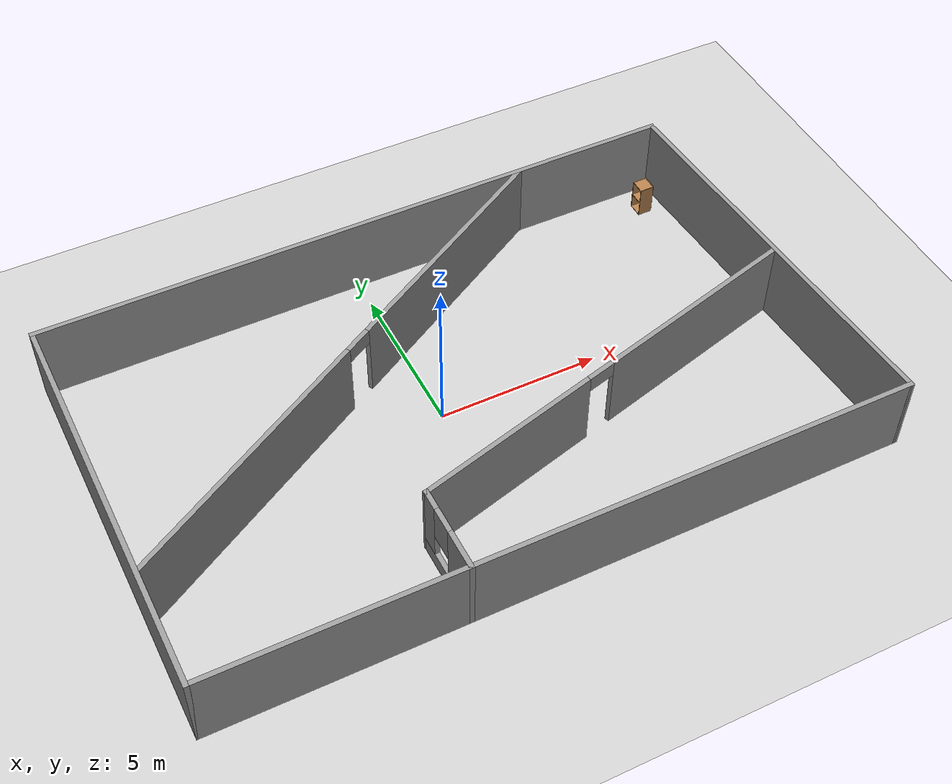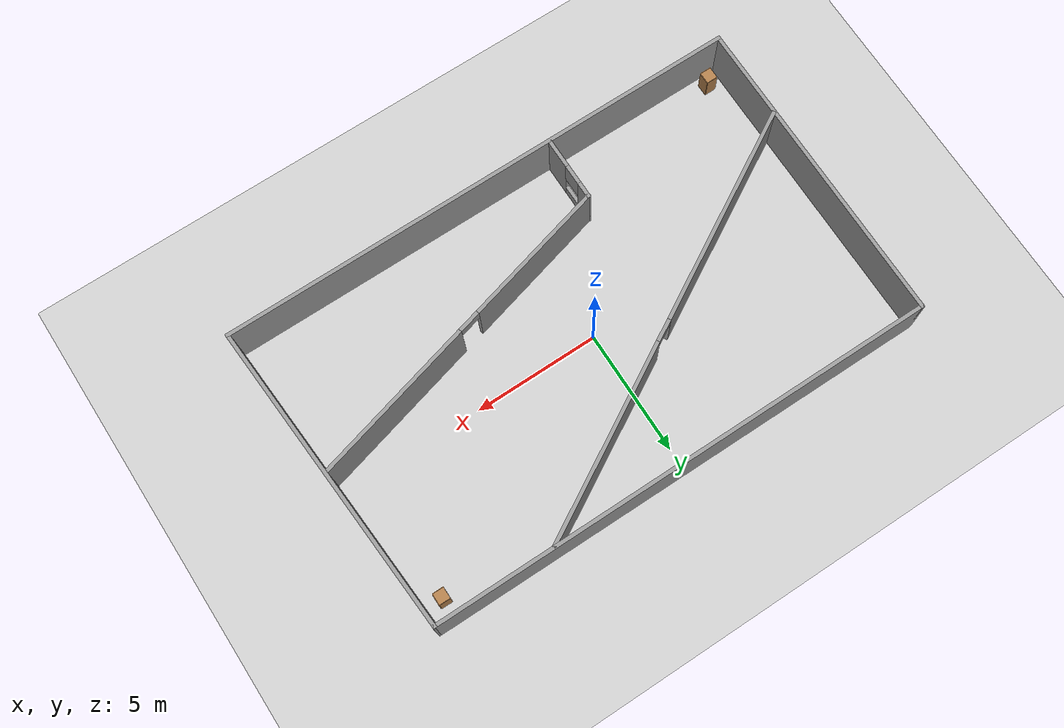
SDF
<sdf version="1.6">
 <world name="default">
  <light name="sun" type="directional">
   <pose>0 0 10 0 -0 0</pose>
   <diffuse>0.8 0.8 0.8 1</diffuse>
   <specular>0.2 0.2 0.2 1</specular>
   <attenuation>
    <range>1000</range>
    <constant>0.9</constant>
    <linear>0.01</linear>
    <quadratic>0.001</quadratic>
   </attenuation>
   <direction>-0.5 0.1 -0.9</direction>
  </light>
  <model name="ground_plane">
   <static>1</static>
   <link name="link">
    <collision name="collision">
     <geometry><plane><normal>0 0 1</normal><size>100 100</size></plane></geometry>
     <surface>
      <contact><collide_bitmask>65535</collide_bitmask></contact>
      <friction><ode><mu>100</mu><mu2>50</mu2></ode></friction>
     </surface>
    </collision>
    <visual name="visual">
     <cast_shadows>0</cast_shadows>
     <geometry><plane><normal>0 0 1</normal><size>100 100</size></plane></geometry>
     <material>
      <script><uri>file://media/materials/scripts/gazebo.material</uri><name>Gazebo/Grey</name></script>
     </material>
    </visual>
   </link>
  </model>
  <gravity>0 0 -9.8</gravity>
  <magnetic_field>6e-06 2.3e-05 -4.2e-05</magnetic_field>
  <atmosphere type="adiabatic"/>
  <physics name="default_physics" default="0" type="ode">
   <max_step_size>0.001</max_step_size>
   <real_time_factor>1</real_time_factor>
   <real_time_update_rate>1000</real_time_update_rate>
  </physics>
  <scene><ambient>0.4 0.4 0.4 1</ambient><background>0.7 0.7 0.7 1</background><shadows>1</shadows></scene>
  <spherical_coordinates>
   <surface_model>EARTH_WGS84</surface_model>
   <latitude_deg>0</latitude_deg>
   <longitude_deg>0</longitude_deg>
   <elevation>0</elevation>
   <heading_deg>0</heading_deg>
  </spherical_coordinates>
  <model name="smaller_world">
   <pose>0.589434 -0.30362 0 0 -0 0</pose>
   <link name="Wall_13">
    <collision name="Wall_13_Collision">
     <geometry><box><size>21.25 0.15 2.5</size></box></geometry>
     <pose>0 0 1.25 0 -0 0</pose>
    </collision>
    <visual name="Wall_13_Visual">
     <pose>0 0 1.25 0 -0 0</pose>
     <geometry><box><size>21.25 0.15 2.5</size></box></geometry>
     <material>
      <script><uri>file://media/materials/scripts/gazebo.material</uri><name>Gazebo/Grey</name></script>
      <ambient>1 1 1 1</ambient>
     </material>
     <meta><layer>0</layer></meta>
    </visual>
    <pose>-0.002162 -6.3 0 0 -0 0</pose>
   </link>
   <link name="Wall_15">
    <collision name="Wall_15_Collision">
     <geometry><box><size>12.75 0.15 2.5</size></box></geometry>
     <pose>0 0 1.25 0 -0 0</pose>
    </collision>
    <visual name="Wall_15_Visual">
     <pose>0 0 1.25 0 -0 0</pose>
     <geometry><box><size>12.75 0.15 2.5</size></box></geometry>
     <material>
      <script><uri>file://media/materials/scripts/gazebo.material</uri><name>Gazebo/Grey</name></script>
      <ambient>1 1 1 1</ambient>
     </material>
     <meta><layer>0</layer></meta>
    </visual>
    <pose>-10.5522 0 0 0 -0 1.5708</pose>
   </link>
   <link name="Wall_16">
    <collision name="Wall_16_Collision">
     <geometry><box><size>20.5 0.15 2.5</size></box></geometry>
     <pose>0 0 1.25 0 -0 0</pose>
    </collision>
    <visual name="Wall_16_Visual">
     <pose>0 0 1.25 0 -0 0</pose>
     <geometry><box><size>20.5 0.15 2.5</size></box></geometry>
     <material>
      <script><uri>file://media/materials/scripts/gazebo.material</uri><name>Gazebo/Grey</name></script>
      <ambient>1 1 1 1</ambient>
     </material>
     <meta><layer>0</layer></meta>
    </visual>
    <pose>-0.377162 6.3 0 0 -0 0</pose>
   </link>
   <link name="Wall_17">
    <collision name="Wall_17_Collision">
     <geometry><box><size>12.7723 0.15 2.5</size></box></geometry>
     <pose>0 0 1.25 0 -0 0</pose>
    </collision>
    <visual name="Wall_17_Visual">
     <pose>0 0 1.25 0 -0 0</pose>
     <geometry><box><size>12.7723 0.15 2.5</size></box></geometry>
     <material>
      <script><uri>file://media/materials/scripts/gazebo.material</uri><name>Gazebo/Grey</name></script>
      <ambient>1 1 1 1</ambient>
     </material>
     <meta><layer>0</layer></meta>
    </visual>
    <pose>10.1728 0 0 0 0 -1.51134</pose>
   </link>
   <link name="Wall_19">
    <pose>-2.76136 1.79265 0 0 -0 0.523599</pose>
    <visual name="Wall_19_Visual_0">
     <pose>-4.51706 0 1.25 0 -0 0</pose>
     <geometry><box><size>8.96588 0.15 2.5</size></box></geometry>
     <material>
      <script><uri>file://media/materials/scripts/gazebo.material</uri><name>Gazebo/Grey</name></script>
      <ambient>1 1 1 1</ambient>
     </material>
     <meta><layer>0</layer></meta>
    </visual>
    <collision name="Wall_19_Collision_0">
     <geometry><box><size>8.96588 0.15 2.5</size></box></geometry>
     <pose>-4.51706 0 1.25 0 -0 0</pose>
    </collision>
    <visual name="Wall_19_Visual_1">
     <pose>4.93294 0 1.25 0 -0 0</pose>
     <geometry><box><size>8.13412 0.15 2.5</size></box></geometry>
     <material>
      <script><uri>file://media/materials/scripts/gazebo.material</uri><name>Gazebo/Grey</name></script>
      <ambient>1 1 1 1</ambient>
     </material>
     <meta><layer>0</layer></meta>
    </visual>
    <collision name="Wall_19_Collision_1">
     <geometry><box><size>8.13412 0.15 2.5</size></box></geometry>
     <pose>4.93294 0 1.25 0 -0 0</pose>
    </collision>
    <visual name="Wall_19_Visual_2">
     <pose>0.415876 0 2.25 0 -0 0</pose>
     <geometry><box><size>0.9 0.15 0.5</size></box></geometry>
     <material>
      <script><uri>file://media/materials/scripts/gazebo.material</uri><name>Gazebo/Grey</name></script>
      <ambient>1 1 1 1</ambient>
     </material>
     <meta><layer>0</layer></meta>
    </visual>
    <collision name="Wall_19_Collision_2">
     <geometry><box><size>0.9 0.15 0.5</size></box></geometry>
     <pose>0.415876 0 2.25 0 -0 0</pose>
    </collision>
   </link>
   <link name="Wall_21">
    <pose>-2.98423 -5 0 0 -0 1.5708</pose>
    <visual name="Wall_21_Visual_0">
     <pose>-0.737638 0 1.25 0 -0 0</pose>
     <geometry><box><size>1.27473 0.15 2.5</size></box></geometry>
     <material>
      <script><uri>file://media/materials/scripts/gazebo.material</uri><name>Gazebo/Grey</name></script>
      <ambient>1 1 1 1</ambient>
     </material>
     <meta><layer>0</layer></meta>
    </visual>
    <collision name="Wall_21_Collision_0">
     <geometry><box><size>1.27473 0.15 2.5</size></box></geometry>
     <pose>-0.737638 0 1.25 0 -0 0</pose>
    </collision>
    <visual name="Wall_21_Visual_1">
     <pose>0.637362 0 0.25 0 -0 0</pose>
     <geometry><box><size>1.47527 0.15 0.5</size></box></geometry>
     <material>
      <script><uri>file://media/materials/scripts/gazebo.material</uri><name>Gazebo/Grey</name></script>
      <ambient>1 1 1 1</ambient>
     </material>
     <meta><layer>0</layer></meta>
    </visual>
    <collision name="Wall_21_Collision_1">
     <geometry><box><size>1.47527 0.15 0.5</size></box></geometry>
     <pose>0.637362 0 0.25 0 -0 0</pose>
    </collision>
    <visual name="Wall_21_Visual_2">
     <pose>1.03736 0 1.5 0 -0 0</pose>
     <geometry><box><size>0.675275 0.15 2</size></box></geometry>
     <material>
      <script><uri>file://media/materials/scripts/gazebo.material</uri><name>Gazebo/Grey</name></script>
      <ambient>1 1 1 1</ambient>
     </material>
     <meta><layer>0</layer></meta>
    </visual>
    <collision name="Wall_21_Collision_2">
     <geometry><box><size>0.675275 0.15 2</size></box></geometry>
     <pose>1.03736 0 1.5 0 -0 0</pose>
    </collision>
    <visual name="Wall_21_Visual_3">
     <pose>0.299725 0 1.9 0 -0 0</pose>
     <geometry><box><size>0.8 0.15 1.2</size></box></geometry>
     <material>
      <script><uri>file://media/materials/scripts/gazebo.material</uri><name>Gazebo/Grey</name></script>
      <ambient>1 1 1 1</ambient>
     </material>
     <meta><layer>0</layer></meta>
    </visual>
    <collision name="Wall_21_Collision_3">
     <geometry><box><size>0.8 0.15 1.2</size></box></geometry>
     <pose>0.299725 0 1.9 0 -0 0</pose>
    </collision>
   </link>
   <link name="Wall_22">
    <pose>3.58406 -1.94003 0 0 -0 0.261799</pose>
    <visual name="Wall_22_Visual_0">
     <pose>-3.878 0 1.25 0 -0 0</pose>
     <geometry><box><size>5.994 0.15 2.5</size></box></geometry>
     <material>
      <script><uri>file://media/materials/scripts/gazebo.material</uri><name>Gazebo/Grey</name></script>
      <ambient>1 1 1 1</ambient>
     </material>
     <meta><layer>0</layer></meta>
    </visual>
    <collision name="Wall_22_Collision_0">
     <geometry><box><size>5.994 0.15 2.5</size></box></geometry>
     <pose>-3.878 0 1.25 0 -0 0</pose>
    </collision>
    <visual name="Wall_22_Visual_1">
     <pose>3.447 0 1.25 0 -0 0</pose>
     <geometry><box><size>6.856 0.15 2.5</size></box></geometry>
     <material>
      <script><uri>file://media/materials/scripts/gazebo.material</uri><name>Gazebo/Grey</name></script>
      <ambient>1 1 1 1</ambient>
     </material>
     <meta><layer>0</layer></meta>
    </visual>
    <collision name="Wall_22_Collision_1">
     <geometry><box><size>6.856 0.15 2.5</size></box></geometry>
     <pose>3.447 0 1.25 0 -0 0</pose>
    </collision>
    <visual name="Wall_22_Visual_2">
     <pose>-0.430996 0 2.25 0 -0 0</pose>
     <geometry><box><size>0.9 0.15 0.5</size></box></geometry>
     <material>
      <script><uri>file://media/materials/scripts/gazebo.material</uri><name>Gazebo/Grey</name></script>
      <ambient>1 1 1 1</ambient>
     </material>
     <meta><layer>0</layer></meta>
    </visual>
    <collision name="Wall_22_Collision_2">
     <geometry><box><size>0.9 0.15 0.5</size></box></geometry>
     <pose>-0.430996 0 2.25 0 -0 0</pose>
    </collision>
   </link>
   <static>1</static>
  </model>
  <model name="cabinet">
   <static>1</static>
   <link name="cabinet_bottom_plate">
    <inertial>
     <pose>0 0 -1 0 -0 0</pose>
     <inertia><ixx>2.05</ixx><ixy>0</ixy><ixz>0</ixz><iyy>2.05</iyy><iyz>0</iyz><izz>2.05</izz></inertia>
     <mass>25</mass>
    </inertial>
    <collision name="cabinet_bottom_plate_geom">
     <pose>0 0 0.01 0 -0 0</pose>
     <geometry><box><size>0.45 0.45 0.02</size></box></geometry>
    </collision>
    <visual name="cabinet_bottom_plate_geom_visual">
     <pose>0 0 0.01 0 -0 0</pose>
     <geometry><box><size>0.45 0.45 0.02</size></box></geometry>
     <material>
      <script><uri>file://media/materials/scripts/gazebo.material</uri><name>Gazebo/Wood</name></script>
     </material>
    </visual>
    <collision name="cabinet_bottom_plate_geom_cabinet_back_plate">
     <pose>0.235 0 0.51 0 -0 0</pose>
     <geometry><box><size>0.02 0.45 1.02</size></box></geometry>
    </collision>
    <visual name="cabinet_bottom_plate_geom_cabinet_back_plate_visual">
     <pose>0.235 0 0.51 0 -0 0</pose>
     <geometry><box><size>0.02 0.45 1.02</size></box></geometry>
     <material>
      <script><uri>file://media/materials/scripts/gazebo.material</uri><name>Gazebo/Wood</name></script>
     </material>
    </visual>
    <collision name="cabinet_bottom_plate_geom_cabinet_left_plate">
     <pose>0 0.235 0.51 0 -0 0</pose>
     <geometry><box><size>0.45 0.02 1.02</size></box></geometry>
    </collision>
    <visual name="cabinet_bottom_plate_geom_cabinet_left_plate_visual">
     <pose>0 0.235 0.51 0 -0 0</pose>
     <geometry><box><size>0.45 0.02 1.02</size></box></geometry>
     <material>
      <script><uri>file://media/materials/scripts/gazebo.material</uri><name>Gazebo/Wood</name></script>
     </material>
    </visual>
    <collision name="cabinet_bottom_plate_geom_cabinet_middle_plate">
     <pose>0 0 0.51 0 -0 0</pose>
     <geometry><box><size>0.45 0.45 0.02</size></box></geometry>
    </collision>
    <visual name="cabinet_bottom_plate_geom_cabinet_middle_plate_visual">
     <pose>0 0 0.51 0 -0 0</pose>
     <geometry><box><size>0.45 0.45 0.02</size></box></geometry>
     <material>
      <script><uri>file://media/materials/scripts/gazebo.material</uri><name>Gazebo/Wood</name></script>
     </material>
    </visual>
    <collision name="cabinet_bottom_plate_geom_cabinet_right_plate">
     <pose>0 -0.235 0.51 0 -0 0</pose>
     <geometry><box><size>0.45 0.02 1.02</size></box></geometry>
    </collision>
    <visual name="cabinet_bottom_plate_geom_cabinet_right_plate_visual">
     <pose>0 -0.235 0.51 0 -0 0</pose>
     <geometry><box><size>0.45 0.02 1.02</size></box></geometry>
     <material>
      <script><uri>file://media/materials/scripts/gazebo.material</uri><name>Gazebo/Wood</name></script>
     </material>
    </visual>
    <collision name="cabinet_bottom_plate_geom_cabinet_top_plate">
     <pose>0 0 1.01 0 -0 0</pose>
     <geometry><box><size>0.45 0.45 0.02</size></box></geometry>
    </collision>
    <visual name="cabinet_bottom_plate_geom_cabinet_top_plate_visual">
     <pose>0 0 1.01 0 -0 0</pose>
     <geometry><box><size>0.45 0.45 0.02</size></box></geometry>
     <material>
      <script><uri>file://media/materials/scripts/gazebo.material</uri><name>Gazebo/Wood</name></script>
     </material>
    </visual>
   </link>
   <pose>-9.30086 -6.06476 0 0 -0 0</pose>
  </model>
  <model name="cabinet_0">
   <static>1</static>
   <link name="cabinet_bottom_plate">
    <inertial>
     <pose>0 0 -1 0 -0 0</pose>
     <inertia><ixx>2.05</ixx><ixy>0</ixy><ixz>0</ixz><iyy>2.05</iyy><iyz>0</iyz><izz>2.05</izz></inertia>
     <mass>25</mass>
    </inertial>
    <collision name="cabinet_bottom_plate_geom">
     <pose>0 0 0.01 0 -0 0</pose>
     <geometry><box><size>0.45 0.45 0.02</size></box></geometry>
    </collision>
    <visual name="cabinet_bottom_plate_geom_visual">
     <pose>0 0 0.01 0 -0 0</pose>
     <geometry><box><size>0.45 0.45 0.02</size></box></geometry>
     <material>
      <script><uri>file://media/materials/scripts/gazebo.material</uri><name>Gazebo/Wood</name></script>
     </material>
    </visual>
    <collision name="cabinet_bottom_plate_geom_cabinet_back_plate">
     <pose>0.235 0 0.51 0 -0 0</pose>
     <geometry><box><size>0.02 0.45 1.02</size></box></geometry>
    </collision>
    <visual name="cabinet_bottom_plate_geom_cabinet_back_plate_visual">
     <pose>0.235 0 0.51 0 -0 0</pose>
     <geometry><box><size>0.02 0.45 1.02</size></box></geometry>
     <material>
      <script><uri>file://media/materials/scripts/gazebo.material</uri><name>Gazebo/Wood</name></script>
     </material>
    </visual>
    <collision name="cabinet_bottom_plate_geom_cabinet_left_plate">
     <pose>0 0.235 0.51 0 -0 0</pose>
     <geometry><box><size>0.45 0.02 1.02</size></box></geometry>
    </collision>
    <visual name="cabinet_bottom_plate_geom_cabinet_left_plate_visual">
     <pose>0 0.235 0.51 0 -0 0</pose>
     <geometry><box><size>0.45 0.02 1.02</size></box></geometry>
     <material>
      <script><uri>file://media/materials/scripts/gazebo.material</uri><name>Gazebo/Wood</name></script>
     </material>
    </visual>
    <collision name="cabinet_bottom_plate_geom_cabinet_middle_plate">
     <pose>0 0 0.51 0 -0 0</pose>
     <geometry><box><size>0.45 0.45 0.02</size></box></geometry>
    </collision>
    <visual name="cabinet_bottom_plate_geom_cabinet_middle_plate_visual">
     <pose>0 0 0.51 0 -0 0</pose>
     <geometry><box><size>0.45 0.45 0.02</size></box></geometry>
     <material>
      <script><uri>file://media/materials/scripts/gazebo.material</uri><name>Gazebo/Wood</name></script>
     </material>
    </visual>
    <collision name="cabinet_bottom_plate_geom_cabinet_right_plate">
     <pose>0 -0.235 0.51 0 -0 0</pose>
     <geometry><box><size>0.45 0.02 1.02</size></box></geometry>
    </collision>
    <visual name="cabinet_bottom_plate_geom_cabinet_right_plate_visual">
     <pose>0 -0.235 0.51 0 -0 0</pose>
     <geometry><box><size>0.45 0.02 1.02</size></box></geometry>
     <material>
      <script><uri>file://media/materials/scripts/gazebo.material</uri><name>Gazebo/Wood</name></script>
     </material>
    </visual>
    <collision name="cabinet_bottom_plate_geom_cabinet_top_plate">
     <pose>0 0 1.01 0 -0 0</pose>
     <geometry><box><size>0.45 0.45 0.02</size></box></geometry>
    </collision>
    <visual name="cabinet_bottom_plate_geom_cabinet_top_plate_visual">
     <pose>0 0 1.01 0 -0 0</pose>
     <geometry><box><size>0.45 0.45 0.02</size></box></geometry>
     <material>
      <script><uri>file://media/materials/scripts/gazebo.material</uri><name>Gazebo/Wood</name></script>
     </material>
    </visual>
   </link>
   <pose>9.67354 5.0664 0 0 -0 0</pose>
  </model>
  <plugin filename="libcollision_map_creator.so" name="collision_map_creator"/>
 </world>
</sdf>
